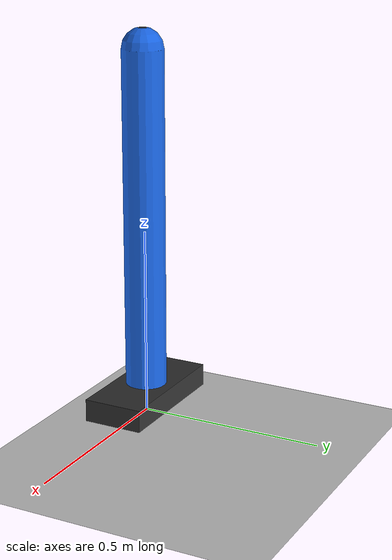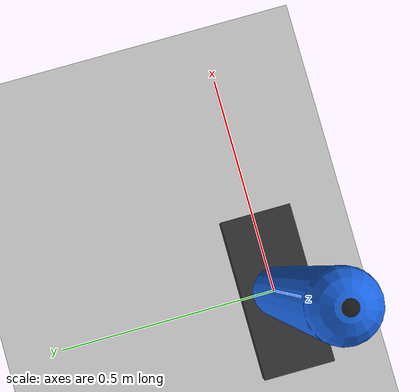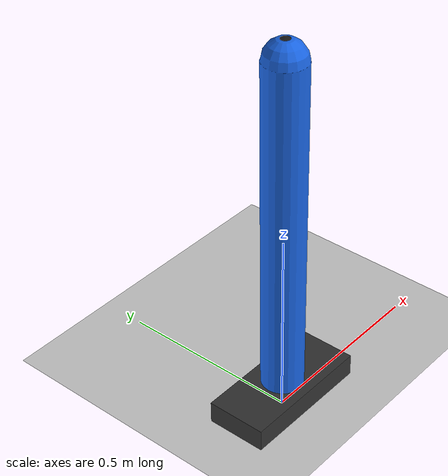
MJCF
<mujoco model="simple_humanoid_balance">
  <compiler angle="radian" inertiafromgeom="true"/>
  <option timestep="0.002" gravity="0 0 -9.81" integrator="RK4"/>

  <default>
    <joint damping="0.02" armature="0.01"/>
    <geom friction="1.0 0.005 0.0001"/>
  </default>

  <worldbody>
    <light pos="0 -3 4" dir="0 1 -1"/>
    <geom name="ground" type="plane" size="3 3 0.1" rgba="0.8 0.8 0.8 1"/>

    <!-- Fixed foot / support point. The body above it is a simplified humanoid trunk. -->
    <body name="foot" pos="0 0 0.05">
      <geom name="foot_geom" type="box" size="0.18 0.08 0.03" rgba="0.2 0.2 0.2 1"/>

      <body name="torso" pos="0 0 0.03">
        <!-- qpos[0] is the ankle angle. q=0 means upright. -->
        <joint name="ankle" type="hinge" axis="0 1 0" limited="true" range="-1.2 1.2"/>
        <geom name="torso_geom" type="capsule" fromto="0 0 0.0 0 0 0.9" size="0.055" mass="6.0" rgba="0.1 0.4 0.9 1"/>
        <site name="com_marker" pos="0 0 0.45" size="0.025" rgba="1 0 0 1"/>
        <site name="head_marker" pos="0 0 0.92" size="0.035" rgba="0.1 0.1 0.1 1"/>
      </body>
    </body>
  </worldbody>

  <actuator>
    <!-- ctrl[0] is ankle torque in Nm. -->
    <motor name="ankle_motor" joint="ankle" gear="1" ctrllimited="true" ctrlrange="-30 30"/>
  </actuator>
</mujoco>
